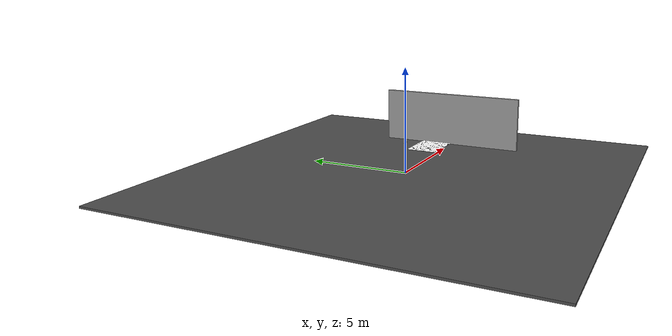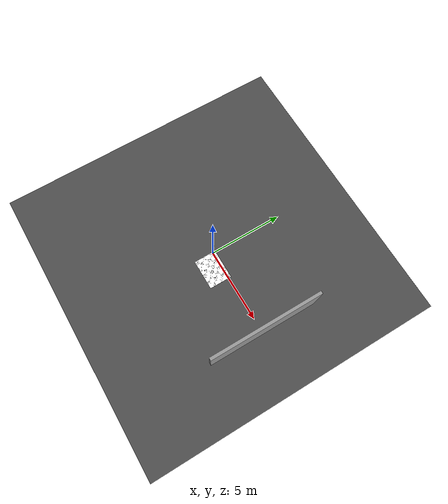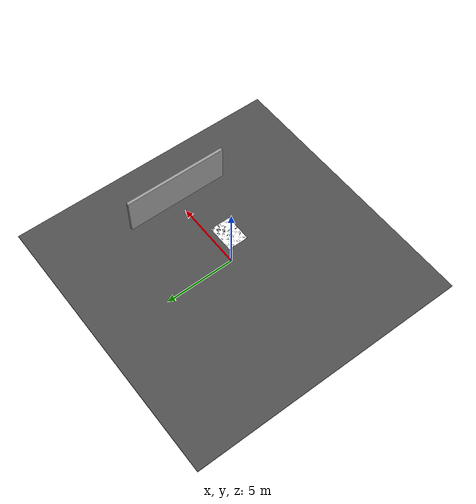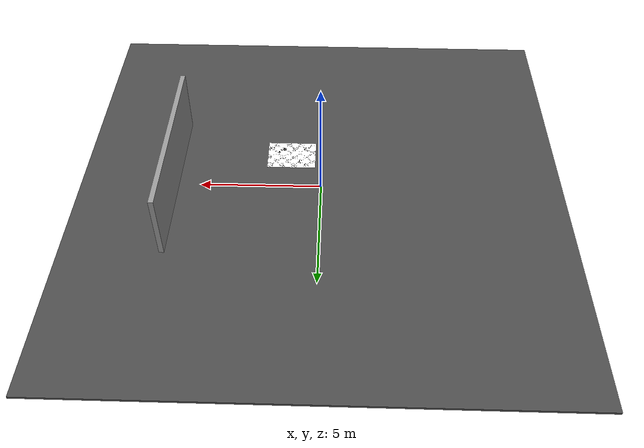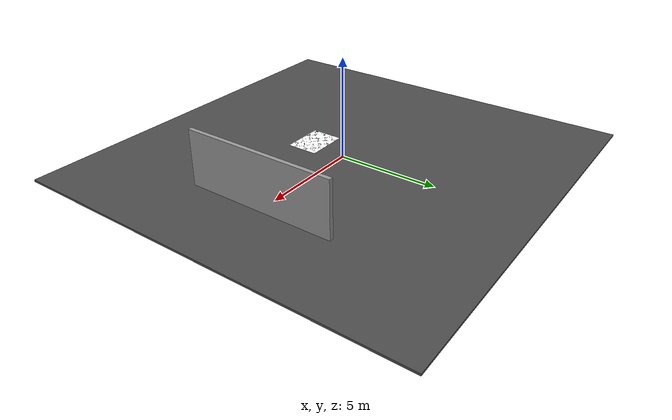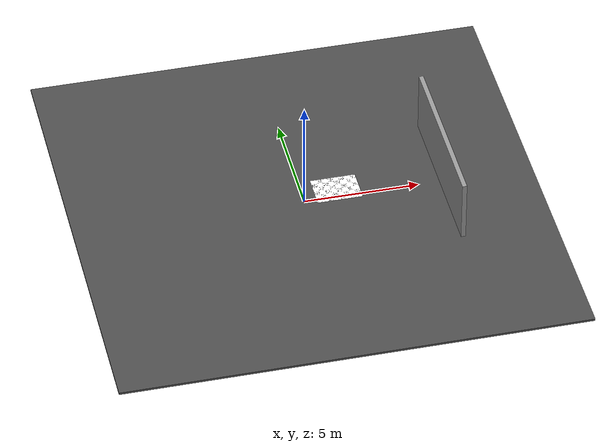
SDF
<sdf version="1.6">
 <world name="default">
  <light name="sun" type="directional">
   <pose>0 0 10 0 -0 0</pose>
   <diffuse>0.8 0.8 0.8 1</diffuse>
   <specular>0.2 0.2 0.2 1</specular>
   <attenuation>
    <range>1000</range>
    <constant>0.9</constant>
    <linear>0.01</linear>
    <quadratic>0.001</quadratic>
   </attenuation>
   <direction>-0.5 0.1 -0.9</direction>
  </light>
  <model name="asphalt_plane">
   <static>1</static>
   <link name="link">
    <collision name="collision"><geometry><box><size>20 20 0.1</size></box></geometry></collision>
    <visual name="visual">
     <cast_shadows>0</cast_shadows>
     <geometry><box><size>20 20 0.1</size></box></geometry>
     <material>
      <script>
       <uri>model://asphalt_plane/materials/scripts</uri>
       <uri>model://asphalt_plane/materials/textures</uri>
       <name>vrc/asphalt</name>
      </script>
     </material>
    </visual>
   </link>
  </model>
  <gravity>0 0 -9.8</gravity>
  <magnetic_field>6e-06 2.3e-05 -4.2e-05</magnetic_field>
  <atmosphere type="adiabatic"/>
  <physics name="default_physics" default="0" type="ode">
   <max_step_size>0.001</max_step_size>
   <real_time_factor>1</real_time_factor>
   <real_time_update_rate>1000</real_time_update_rate>
  </physics>
  <scene><ambient>0.4 0.4 0.4 1</ambient><background>0.7 0.7 0.7 1</background><shadows>1</shadows></scene>
  <spherical_coordinates>
   <surface_model>EARTH_WGS84</surface_model>
   <latitude_deg>0</latitude_deg>
   <longitude_deg>0</longitude_deg>
   <elevation>0</elevation>
   <heading_deg>0</heading_deg>
  </spherical_coordinates>
  <model name="camera">
   <pose>0 0 1.5 0 -0 0</pose>
   <static>1</static>
   <link name="link">
    <inertial>
     <mass>0.1</mass>
     <inertia>
      <ixx>0.000166667</ixx>
      <iyy>0.000166667</iyy>
      <izz>0.000166667</izz>
      <ixy>0</ixy>
      <ixz>0</ixz>
      <iyz>0</iyz>
     </inertia>
    </inertial>
    <visual name="visual"><geometry><box><size>0.1 0.1 0.1</size></box></geometry></visual>
    <sensor name="camera1" type="camera">
     <update_rate>30</update_rate>
     <visualize>1</visualize>
     <camera name="head">
      <horizontal_fov>1.39626</horizontal_fov>
      <image><width>1024</width><height>1024</height><format>R8G8B8</format></image>
      <clip><near>0.2</near><far>300</far></clip>
      <noise><type>gaussian</type><mean>0</mean><stddev>0.007</stddev></noise>
     </camera>
     <plugin name="camera_controller" filename="libgazebo_ros_camera.so">
      <alwaysOn>true</alwaysOn>
      <updateRate>0.0</updateRate>
      <cameraName>camera1</cameraName>
      <imageTopicName>image_raw</imageTopicName>
      <cameraInfoTopicName>camera_info</cameraInfoTopicName>
      <frameName>camera</frameName>
      <hackBaseline>0.07</hackBaseline>
      <distortionK1>0.0</distortionK1>
      <distortionK2>0.0</distortionK2>
      <distortionK3>0.0</distortionK3>
      <distortionT1>0.0</distortionT1>
      <distortionT2>0.0</distortionT2>
      <robotNamespace>/</robotNamespace>
     </plugin>
    </sensor>
   </link>
  </model>
  <model name="grey_wall">
   <static>1</static>
   <link name="link">
    <pose>0 0 1.4 0 -0 0</pose>
    <collision name="collision"><geometry><box><size>7.5 0.2 2.8</size></box></geometry></collision>
    <visual name="visual">
     <cast_shadows>0</cast_shadows>
     <geometry><box><size>7.5 0.2 2.8</size></box></geometry>
     <material>
      <script>
       <uri>model://grey_wall/materials/scripts</uri>
       <uri>model://grey_wall/materials/textures</uri>
       <name>vrc/grey_wall</name>
      </script>
     </material>
    </visual>
   </link>
   <pose>6 0 0 0 -0 1.57</pose>
  </model>
  <model name="asym_chessboard">
   <pose>2.19 0 1.1 0 0 -3.14159</pose>
   <static>1</static>
   <link name="body">
    <visual name="visual">
     <geometry>
      <mesh><uri>model://asym_chessboard/meshes/asym_chessboard.dae</uri><scale>1 1 1</scale></mesh>
     </geometry>
    </visual>
    <collision name="collision">
     <geometry>
      <mesh><uri>model://asym_chessboard/meshes/asym_chessboard.dae</uri><scale>1 1 1</scale></mesh>
     </geometry>
    </collision>
   </link>
  </model>
 </world>
</sdf>
